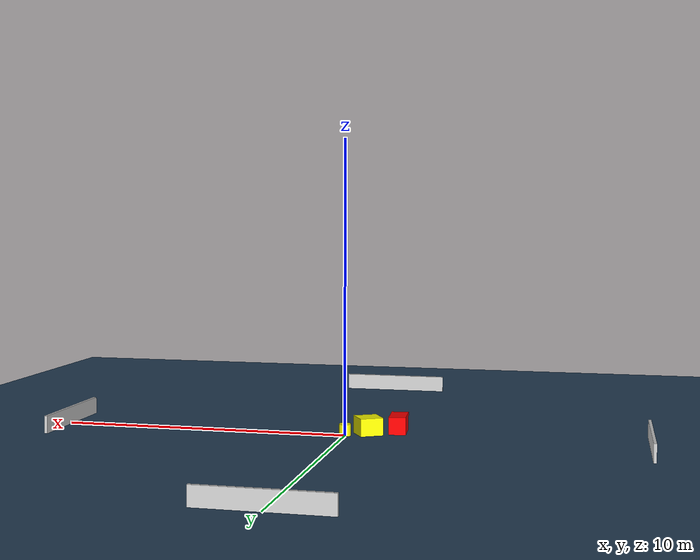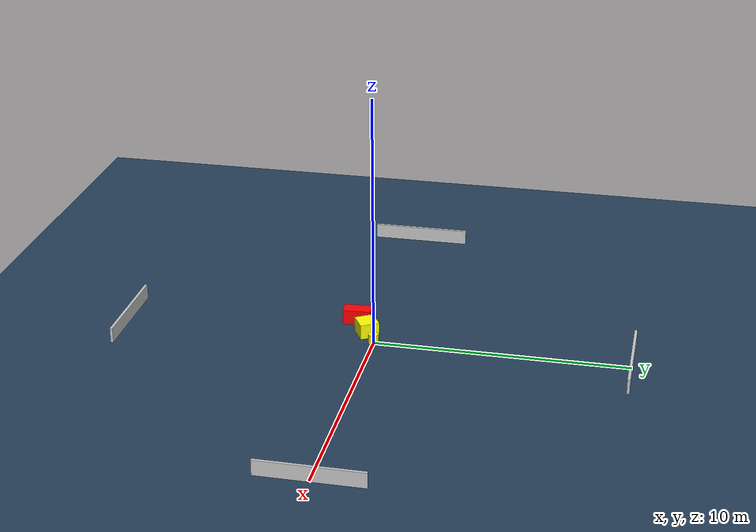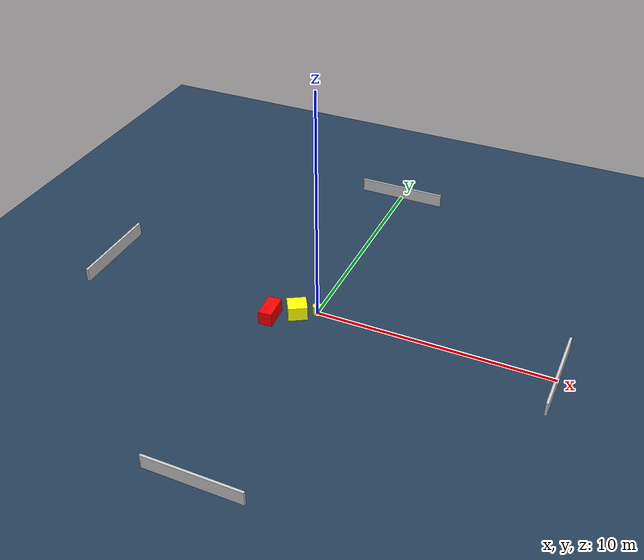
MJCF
<?xml version="1.0" ?>
<mujoco model="generated_environment">
  <option timestep="0.01" integrator="RK4" cone="elliptic"/>
  <default>
    <geom density="1"/>
  </default>
  <asset>
    <texture builtin="gradient" height="3072" name="skybox" rgb1="0.3 0.5 0.7" rgb2="0 0 0" type="skybox" width="512"/>
    <texture builtin="checker" height="300" name="groundplane" rgb1="0.2 0.3 0.4" rgb2="0.1 0.2 0.3" type="2d" width="300"/>
    <material name="groundplane" reflectance="0.2" texrepeat="5 5" texture="groundplane"/>
  </asset>
  <worldbody>
    <light dir="0 0 -1" directional="true" pos="0 0 1.5"/>
    <geom condim="3" friction="0.5 0.005 0.001" material="groundplane" name="floor" pos="0 0 0" size="0 0 0.05" type="plane"/>
    <body name="walls">
      <geom name="wall_1" condim="4" pos="-10.0 0.0 0.3" rgba="0.800000011920929 0.800000011920929 0.800000011920929 1.0" size="0.05 2.0 0.3" type="box"/>
      <geom name="wall_2" condim="4" pos="10.0 0.0 0.3" rgba="0.800000011920929 0.800000011920929 0.800000011920929 1.0" size="0.05 2.0 0.3" type="box"/>
      <geom name="wall_3" condim="4" pos="0.0 -10.0 0.3" rgba="0.800000011920929 0.800000011920929 0.800000011920929 1.0" size="2.0 0.05 0.3" type="box"/>
      <geom name="wall_4" condim="4" pos="0.0 10.0 0.3" rgba="0.800000011920929 0.800000011920929 0.800000011920929 1.0" size="2.0 0.05 0.3" type="box"/>
    </body>
    <body name="robot">
      <joint name="joint_x" type="slide" pos="0 0 0" axis="1 0 0"/>
      <joint name="joint_y" type="slide" pos="0 0 0" axis="0 1 0"/>
      <geom name="robot" type="cylinder" pos="0.0 0.0 0.2" size="0.2 0.2 0.0" mass="5.0" friction="1.0 0.005 0.0001" condim="4" rgba="1.0 1.0 0.0 1.0"/>
    </body>
    <body name="obstacle_1_movable">
      <geom name="obstacle_1_movable" condim="4" pos="-0.7230790858621475 -0.4160597486589888 0.3" euler="0 0 210.2315121240656" friction="0.0 0.005 0.001" rgba="1.0 1.0 0.0 1.0" size="0.40357394021785026 0.38446773695917047 0.3" type="box" mass="0.1"/>
      <joint type="free"/>
    </body>
    <body name="obstacle_2_static">
      <geom name="obstacle_2_static" condim="4" pos="-1.6639411829578599 -1.0106099436776643 0.3" euler="0 0 94.1496507500219" friction="0.0 0.005 0.001" rgba="1.0 0.0 0.0 1.0" size="0.5574685618244728 0.2896059442948272 0.3" type="box"/>
    </body>
  </worldbody>
  <actuator>
    <motor name="actuator_x" joint="joint_x" gear="1" ctrlrange="-1 1"/>
    <motor name="actuator_y" joint="joint_y" gear="1" ctrlrange="-1 1"/>
  </actuator>
</mujoco>
